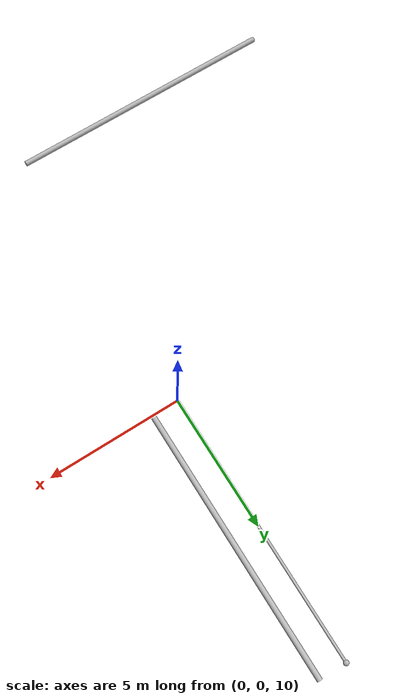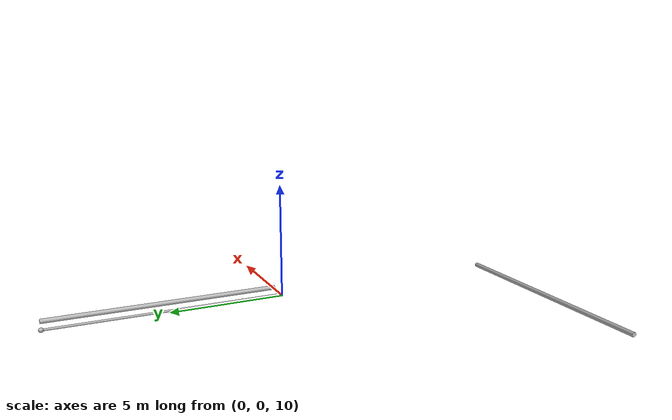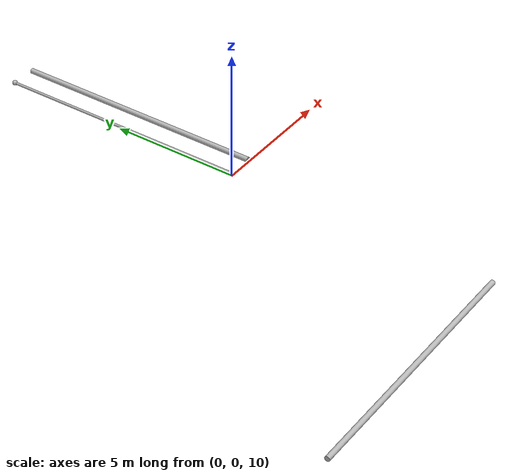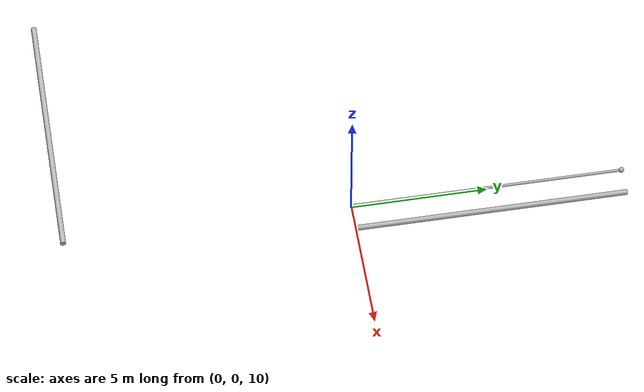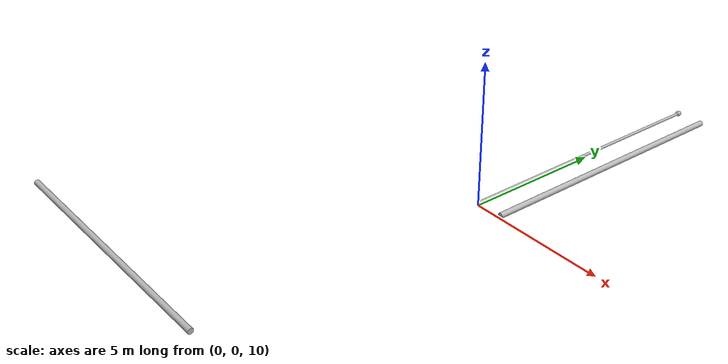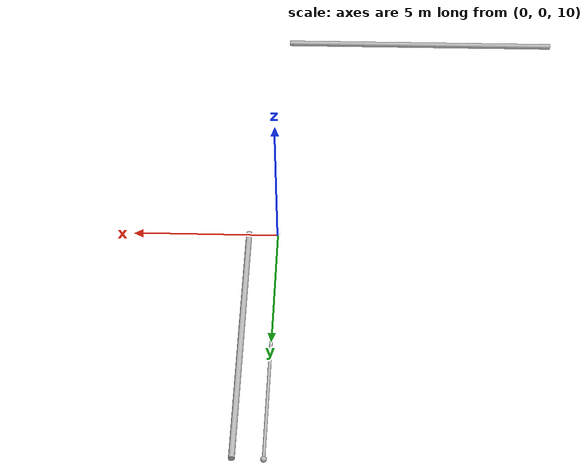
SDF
<?xml version="1.0" ?>
<sdf version="1.4">
    <world name="default">
        <scene>
            <ambient>0.5 0.5 0.5 1</ambient>
            <background>0.5 0.5 0.5 1</background>
            <shadows>false</shadows>
        </scene>
        <include>
            <uri>model://sun</uri>
        </include>
        <physics type="rtql8">
            <gravity>0.0 0.0 -9.81</gravity>
            <ode>
                <solver>
                    <type>quick</type>
                    <iters>1000</iters>
                    <sor>1.0</sor>
                </solver>
                <constraints>
                    <cfm>0</cfm>
                    <erp>1.0</erp>
                    <contact_max_correcting_vel>0.0</contact_max_correcting_vel>
                    <contact_surface_layer>0.0</contact_surface_layer>
                </constraints>
            </ode>
            <max_step_size>0.001</max_step_size>
        </physics>
        <model name="model_1">
            <pose>0.0 0.0 10.1 1.57079633 0.0 0.0</pose>
            <link name="link_1">
                <pose>0.0 0.0 0.0 0.0 0.0 0.0</pose>
                <inertial>
                    <pose>0.0 0.0 -10.0 0.0 0.0 0.0</pose>
                    <inertia>
                        <ixx>1e-1</ixx>
                        <ixy>0.0</ixy>
                        <ixz>0.0</ixz>
                        <iyy>1e-1</iyy>
                        <iyz>0.0</iyz>
                        <izz>1e-1</izz>
                    </inertia>
                    <mass>5.0</mass>
                </inertial>
                <velocity_decay>
                    <linear>0.0</linear>
                    <angular>0.0</angular>
                </velocity_decay>
                <visual name="visual_cylinder">
                    <pose>0.0 0.0 -5.0 0.0 0.0 0.0</pose>
                    <geometry>
                        <cylinder>
                            <radius>0.05</radius>
                            <length>10.0</length>
                        </cylinder>
                    </geometry>
                    <material>
                        <script>Gazebo/Green</script>
                    </material>
                </visual>
                <collision name="collision_cylinder">
                    <pose>0.0 0.0 -5.0 0.0 0.0 0.0</pose>
                    <max_contacts>250</max_contacts>
                    <geometry>
                        <cylinder>
                            <radius>0.05</radius>
                            <length>10.0</length>
                        </cylinder>
                    </geometry>
                </collision>
                <gravity>true</gravity>
                <self_collide>true</self_collide>
                <kinematic>false</kinematic>
            </link>
            <joint name="joint_0" type="revolute">
                <pose>0.0 0.0 0.0 0.0 0.0 0.0</pose>
                <axis>
                    <xyz>1.0 0.0 0.0</xyz>
                </axis>
                <parent>
                    <link_name>world</link_name>
                </parent>
                <child>
                    <link_name>link_1</link_name>
                </child>
            </joint>
            <link name="link_2">
                <pose>0.0 0.0 -10.0 0.0 0.0 0.0</pose>
                <inertial>
                    <pose>0.0 0.0 0.0 0.0 0.0 0.0</pose>
                    <inertia>
                        <ixx>1e-1</ixx>
                        <ixy>0.0</ixy>
                        <ixz>0.0</ixz>
                        <iyy>1e-1</iyy>
                        <iyz>0.0</iyz>
                        <izz>1e-1</izz>
                    </inertia>
                    <mass>5.0</mass>
                </inertial>
                <velocity_decay>
                    <linear>0.0</linear>
                    <angular>0.0</angular>
                </velocity_decay>
                <visual name="visual_sphere">
                    <pose>0.0 0.0 0.0 0.0 0.0 0.0</pose>
                    <geometry>
                        <sphere>
                            <radius>0.1</radius>
                        </sphere>
                    </geometry>
                    <material>
                        <script>Gazebo/Red</script>
                    </material>
                </visual>
                <collision name="collision_sphere">
                    <pose>0.0 0.0 0.0 0.0 0.0 0.0</pose>
                    <max_contacts>250</max_contacts>
                    <geometry>
                        <sphere>
                            <radius>0.1</radius>
                        </sphere>
                    </geometry>
                </collision>
                <gravity>true</gravity>
                <self_collide>true</self_collide>
                <kinematic>false</kinematic>
            </link>
            <joint name="joint_1" type="revolute">
                <pose>0.0 0.0 0.0 0.0 0.0 0.0</pose>
                <axis>
                    <limit>
                        <lower>0</lower>
                        <upper>0</upper>
                        <effort>0</effort>
                        <velocity>0</velocity>
                    </limit>
                    <xyz>0 0 1</xyz>
                </axis>
                <parent>
                    <link_name>link_1</link_name>
                </parent>
                <child>
                    <link_name>link_2</link_name>
                </child>
            </joint>
            <static>false</static>
        </model>
        <model name="model_2">
            <pose>1.0 0.0 10.1 1.57079633 0.0 0.0</pose>
            <link name="link_1">
                <pose>0.0 0.0 0.0 0.0 0.0 0.0</pose>
                <inertial>
                    <pose>0.0 0.0 -10.0 0.0 0.0 0.0</pose>
                    <inertia>
                        <ixx>1e-1</ixx>
                        <ixy>0.0</ixy>
                        <ixz>0.0</ixz>
                        <iyy>1e-1</iyy>
                        <iyz>0.0</iyz>
                        <izz>1e-1</izz>
                    </inertia>
                    <mass>10.0</mass>
                </inertial>
                <velocity_decay>
                    <linear>0.0</linear>
                    <angular>0.0</angular>
                </velocity_decay>
                <visual name="visual_cylinder">
                    <pose>0.0 0.0 -5.0 0.0 0.0 0.0</pose>
                    <geometry>
                        <cylinder>
                            <radius>0.1</radius>
                            <length>10.0</length>
                        </cylinder>
                    </geometry>
                    <material>
                        <script>Gazebo/Green</script>
                    </material>
                </visual>
                <collision name="collision_cylinder">
                    <pose>0.0 0.0 -5.0 0.0 0.0 0.0</pose>
                    <max_contacts>250</max_contacts>
                    <geometry>
                        <cylinder>
                            <radius>0.1</radius>
                            <length>10.0</length>
                        </cylinder>
                    </geometry>
                </collision>
                <gravity>true</gravity>
                <self_collide>true</self_collide>
                <kinematic>false</kinematic>
            </link>
            <joint name="joint_0" type="revolute">
                <pose>0.0 0.0 0.0 0.0 0.0 0.0</pose>
                <axis>
                    <xyz>1.0 0.0 0.0</xyz>
                </axis>
                <parent>
                    <link_name>world</link_name>
                </parent>
                <child>
                    <link_name>link_1</link_name>
                </child>
            </joint>
            <static>false</static>
        </model>
        <model name="model_3">
            <pose>0.0 -10.5 10.1 0.0 1.57079633 0.0</pose>
            <link name="link_1">
                <pose>0.0 0.0 0.0 0.0 0.0 0.0</pose>
                <inertial>
                    <pose>0.0 0.0 -10.0 0.0 0.0 0.0</pose>
                    <inertia>
                        <ixx>1e-1</ixx>
                        <ixy>0.0</ixy>
                        <ixz>0.0</ixz>
                        <iyy>1e-1</iyy>
                        <iyz>0.0</iyz>
                        <izz>1e-1</izz>
                    </inertia>
                    <mass>10.0</mass>
                </inertial>
                <velocity_decay>
                    <linear>0.0</linear>
                    <angular>0.0</angular>
                </velocity_decay>
                <visual name="visual_cylinder">
                    <pose>0.0 0.0 -5.0 0.0 0.0 0.0</pose>
                    <geometry>
                        <cylinder>
                            <radius>0.1</radius>
                            <length>10.0</length>
                        </cylinder>
                    </geometry>
                    <material>
                        <script>Gazebo/Green</script>
                    </material>
                </visual>
                <collision name="collision_cylinder">
                    <pose>0.0 0.0 -5.0 0.0 0.0 0.0</pose>
                    <max_contacts>250</max_contacts>
                    <geometry>
                        <cylinder>
                            <radius>0.1</radius>
                            <length>10.0</length>
                        </cylinder>
                    </geometry>
                </collision>
                <gravity>true</gravity>
                <self_collide>true</self_collide>
                <kinematic>false</kinematic>
            </link>
            <joint name="joint_0" type="revolute">
                <pose>0.0 0.0 0.0 0.0 0.0 0.0</pose>
                <axis>
                    <xyz>0.0 1.0 0.0</xyz>
                </axis>
                <parent>
                    <link_name>world</link_name>
                </parent>
                <child>
                    <link_name>link_1</link_name>
                </child>
            </joint>
            <static>false</static>
        </model>
    </world>
</sdf>
